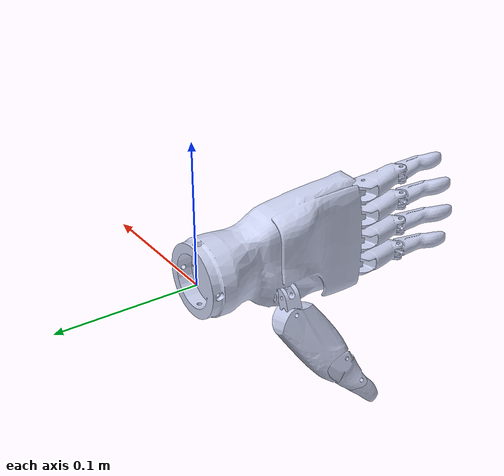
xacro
<?xml version="1.0"?>
<robot xmlns:xacro="http://www.ros.org/wiki/xacro">
  <!-- Define constants -->
  <xacro:property name="mesh_path" value="file://$(find dual_rm_65b_description)/meshes/" />

  <!-- Macro for visual and collision elements -->
  <xacro:macro name="visual_collision" params="mesh">
    <visual>
      <origin xyz="0 0 0" rpy="0 0 0" />
      <geometry>
        <mesh filename="${mesh_path}${mesh}" />
      </geometry>
      <material name="">
        <color rgba="0.79216 0.81961 0.93333 1" />
      </material>
    </visual>
    <collision>
      <origin xyz="0 0 0" rpy="0 0 0" />
      <geometry>
        <mesh filename="${mesh_path}${mesh}" />
      </geometry>
    </collision>
  </xacro:macro>

  <link
    name="right_hand_base_link">
    <inertial>
      <origin
        xyz="-0.0025264 -0.066047 0.0019598"
        rpy="0 0 0"/>
      <mass
        value="0.14143"/>
      <inertia
        ixx="0.00012281"
        ixy="2.1711E-06"
        ixz="1.7709E-06"
        iyy="8.3832E-05"
        iyz="-1.6551E-06"
        izz="7.6663E-05"/>
    </inertial>
    <xacro:visual_collision mesh="right_base_link.dae" />
    <collision>
      <origin
        xyz="0 -0.0136 0"
        rpy="1.57079 0 0"/>
      <geometry>
        <cylinder
          length="0.0278"
          radius="0.028"/>
      </geometry>
    </collision>
    <collision>
      <origin
        xyz="-0.0032 -0.038 0"
        rpy="0 0 0"/>
      <geometry>
        <box
          size="0.0391 0.0202 0.0574"/>
      </geometry>
    </collision>
    <collision>
      <origin
        xyz="-0.0032 -0.0682 0"
        rpy="0 0 0"/>
      <geometry>
        <box
          size="0.0391 0.04 0.0814"/>
      </geometry>
    </collision>
    <collision>
      <origin
        xyz="0 -0.1081 0"
        rpy="0 0 0"/>
      <geometry>
        <box
          size="0.0322 0.04 0.0814"/>
      </geometry>
    </collision>
    <collision>
      <origin
        xyz="-0.0016 -0.1340 0.0309"
        rpy="0 0 0"/>
      <geometry>
        <box
          size="0.0125 0.0111 0.0089"/>
      </geometry>
    </collision>
    <collision>
      <origin
        xyz="-0.0016 -0.1340 0.0118"
        rpy="0 0 0"/>
      <geometry>
        <box
          size="0.0125 0.0111 0.0089"/>
      </geometry>
    </collision>
    <collision>
      <origin
        xyz="-0.0016 -0.1340 -0.0070"
        rpy="0 0 0"/>
      <geometry>
        <box
          size="0.0125 0.0111 0.0089"/>
      </geometry>
    </collision>
    <collision>
      <origin
        xyz="-0.0016 -0.1340 -0.0262"
        rpy="0 0 0"/>
      <geometry>
        <box
          size="0.0125 0.0111 0.0089"/>
      </geometry>
    </collision>
  </link>

  <link
    name="right_thumb_proximal_base">
    <inertial>
      <origin
        xyz="-0.0048064 0.0009382 -0.00757"
        rpy="0 0 0"/>
      <mass
        value="0.0018869"/>
      <inertia
        ixx="5.816E-08"
        ixy="1.4539E-08"
        ixz="4.491E-09"
        iyy="7.9161E-08"
        iyz="-1.8727E-09"
        izz="6.7433E-08"/>
    </inertial>
    <xacro:visual_collision mesh="right_thumb_proximal_base.dae" />
  </link>

  <joint
    name="right_thumb_proximal_yaw_joint"
    type="revolute">
    <origin
      xyz="-0.01696 -0.0691 -0.02045"
      rpy="1.5708 -1.5708 0"/>
    <parent
      link="right_hand_base_link"/>
    <child
      link="right_thumb_proximal_base"/>
    <axis
      xyz="0 0 -1"/>
    <limit
      lower="0.0"
      upper="1.308"
      effort="1.0"
      velocity="0.5"/>
  </joint>

  <link
    name="right_thumb_proximal">
    <inertial>
      <origin
        xyz="0.021932 0.012785 -0.0080386"
        rpy="0 0 0"/>
      <mass
        value="0.0066075"/>
      <inertia
        ixx="1.5686E-06"
        ixy="-7.8296E-07"
        ixz="8.9143E-10"
        iyy="1.7353E-06"
        iyz="-1.0191E-09"
        izz="2.786E-06"/>
    </inertial>
    <xacro:visual_collision mesh="right_thumb_proximal.dae" />
  </link>

  <joint
    name="right_thumb_proximal_pitch_joint"
    type="revolute">
    <origin
      xyz="-0.0088099 0.010892 -0.00925"
      rpy="1.5708 0 2.8587"/>
    <parent
      link="right_thumb_proximal_base"/>
    <child
      link="right_thumb_proximal"/>
    <axis
      xyz="0 0 1"/>
    <limit
      lower="0"
      upper="0.6"
      effort="1.0"
      velocity="0.5"/>
  </joint>

  <link
    name="right_thumb_intermediate">
    <inertial>
      <origin
        xyz="0.0095544 -0.0016282 -0.0071997"
        rpy="0 0 0"/>
      <mass
        value="0.0037847"/>
      <inertia
        ixx="3.6981E-07"
        ixy="-9.8581E-08"
        ixz="-4.7469E-12"
        iyy="3.2394E-07"
        iyz="1.0939E-12"
        izz="4.6531E-07"/>
    </inertial>
    <xacro:visual_collision mesh="right_thumb_intermediate.dae" />
  </link>

  <joint
    name="right_thumb_intermediate_joint"
    type="revolute">
    <origin
      xyz="0.04407 0.034553 -0.0008"
      rpy="0 0 0"/>
    <parent
      link="right_thumb_proximal"/>
    <child
      link="right_thumb_intermediate"/>
    <axis
      xyz="0 0 1"/>
    <limit
      lower="0"
      upper="0.8"
      effort="1.0"
      velocity="0.5"/>
  </joint>

  <link
    name="right_thumb_distal">
    <inertial>
      <origin
        xyz="0.0092888 0.0049529 -0.0060033"
        rpy="0 0 0"/>
      <mass
        value="0.0033441"/>
      <inertia
        ixx="1.3632E-07"
        ixy="-5.6788E-08"
        ixz="-9.2764E-11"
        iyy="1.4052E-07"
        iyz="-1.2283E-10"
        izz="2.0026E-07"/>
    </inertial>
    <xacro:visual_collision mesh="right_thumb_distal.dae" />
  </link>

  <joint
    name="right_thumb_distal_joint" type="revolute">
    <origin
      xyz="0.020248 0.010156 -0.0012" rpy="0 0 0"/>
    <parent
      link="right_thumb_intermediate"/>
    <child
      link="right_thumb_distal"/>
    <axis
      xyz="0 0 1"/>
    <limit
      lower="0"
      upper="0.4"
      effort="1.0"
      velocity="0.5"/>
  </joint>

  <link
    name="right_index_proximal">
    <inertial>
      <origin
        xyz="0.0012259 0.011942 -0.0060001"
        rpy="0 0 0"/>
      <mass
        value="0.0042403"/>
      <inertia
        ixx="6.6232E-07"
        ixy="-1.5775E-08"
        ixz="1.8515E-12"
        iyy="2.1146E-07"
        iyz="-5.0828E-12"
        izz="6.9398E-07"/>
    </inertial>
    <xacro:visual_collision mesh="right_index_proximal.dae" />
  </link>

  <joint
    name="right_index_proximal_joint"
    type="revolute">
    <origin
      xyz="0.00028533 -0.13653 -0.032268"
      rpy="-3.1067 0 0"/>
    <parent
      link="right_hand_base_link"/>
    <child
      link="right_index_proximal"/>
    <axis
      xyz="0 0 1"/>
    <limit
      lower="0"
      upper="1.47"
      effort="1.0"
      velocity="0.5"/>
  </joint>

  <link
    name="right_index_intermediate">
    <inertial>
      <origin
        xyz="0.0019697 0.019589 -0.005"
        rpy="0 0 0"/>
      <mass
        value="0.0045683"/>
      <inertia
        ixx="7.6111E-07"
        ixy="8.7637E-08"
        ixz="-3.7751E-13"
        iyy="9.6076E-08"
        iyz="9.9444E-13"
        izz="7.8179E-07"/>
    </inertial>
    <xacro:visual_collision mesh="right_index_intermediate.dae" />
  </link>

  <joint
    name="right_index_intermediate_joint"
    type="revolute">
    <origin
      xyz="-0.0026138 0.032026 -0.001"
      rpy="0 0 0"/>
    <parent
      link="right_index_proximal"/>
    <child
      link="right_index_intermediate"/>
    <axis
      xyz="0 0 1"/>
    <limit
      lower="-0.04545"
      upper="1.56"
      effort="1.0"
      velocity="0.5"/>
  </joint>

  <link
    name="right_middle_proximal">
    <inertial>
      <origin
        xyz="0.001297 0.011934 -0.0060001"
        rpy="0 0 0"/>
      <mass
        value="0.0042403"/>
      <inertia
        ixx="6.6211E-07"
        ixy="-1.8461E-08"
        ixz="1.8002E-12"
        iyy="2.1167E-07"
        iyz="-6.6808E-12"
        izz="6.9397E-07"/>
    </inertial>
    <xacro:visual_collision mesh="right_index_proximal.dae" />
  </link>

  <joint
    name="right_middle_proximal_joint"
    type="revolute">
    <origin
      xyz="0.00028533 -0.1371 -0.01295"
      rpy="-3.1416 0 0"/>
    <parent
      link="right_hand_base_link"/>
    <child
      link="right_middle_proximal"/>
    <axis
      xyz="0 0 1"/>
    <limit
      lower="0"
      upper="1.47"
      effort="1.0"
      velocity="0.5"/>
  </joint>

  <link
    name="right_middle_intermediate">
    <inertial>
      <origin
        xyz="0.001921 0.020796 -0.005"
        rpy="0 0 0"/>
      <mass
        value="0.0050396"/>
      <inertia
        ixx="9.5822E-07"
        ixy="1.1425E-07"
        ixz="-2.4791E-12"
        iyy="1.0646E-07"
        iyz="5.9173E-12"
        izz="9.8384E-07"/>
    </inertial>
    <xacro:visual_collision mesh="right_middle_intermediate.dae" />
  </link>

  <joint
    name="right_middle_intermediate_joint"
    type="revolute">
    <origin
      xyz="-0.0024229 0.032041 -0.001"
      rpy="0 0 0"/>
    <parent
      link="right_middle_proximal"/>
    <child
      link="right_middle_intermediate"/>
    <axis
      xyz="0 0 1"/>
    <limit
      lower="-0.04545"
      upper="1.56"
      effort="1.0"
      velocity="0.5"/>
  </joint>

  <link
    name="right_ring_proximal">
    <inertial>
      <origin
        xyz="0.001297 0.011934 -0.0060002"
        rpy="0 0 0"/>
      <mass
        value="0.0042403"/>
      <inertia
        ixx="6.6211E-07"
        ixy="-1.8461E-08"
        ixz="1.5793E-12"
        iyy="2.1167E-07"
        iyz="-6.6868E-12"
        izz="6.9397E-07"/>
    </inertial>
    <xacro:visual_collision mesh="right_index_proximal.dae" />
  </link>

  <joint
    name="right_ring_proximal_joint"
    type="revolute">
    <origin
      xyz="0.00028533 -0.13691 0.0062872"
      rpy="3.0892 0 0"/>
    <parent
      link="right_hand_base_link"/>
    <child
      link="right_ring_proximal"/>
    <axis
      xyz="0 0 1"/>
    <limit
      lower="0"
      upper="1.47"
      effort="1.0"
      velocity="0.5"/>
  </joint>

  <link
    name="right_ring_intermediate">
    <inertial>
      <origin
        xyz="0.0021753 0.019567 -0.005"
        rpy="0 0 0"/>
      <mass
        value="0.0045683"/>
      <inertia
        ixx="7.6286E-07"
        ixy="8.0635E-08"
        ixz="-6.1562E-13"
        iyy="9.431E-08"
        iyz="5.8619E-13"
        izz="7.8177E-07"/>
    </inertial>
    <xacro:visual_collision mesh="right_index_intermediate.dae" />
  </link>

  <joint
    name="right_ring_intermediate_joint" type="revolute">
    <origin
      xyz="-0.0024229 0.032041 -0.001" rpy="0 0 0"/>
    <parent
      link="right_ring_proximal"/>
    <child
      link="right_ring_intermediate"/>
    <axis
      xyz="0 0 1"/>
    <limit
      lower="-0.04545"
      upper="1.56"
      effort="1.0"
      velocity="0.5"/>
  </joint>

  <link
    name="right_pinky_proximal">
    <inertial>
      <origin
        xyz="0.001297 0.011934 -0.0060001"
        rpy="0 0 0"/>
      <mass
        value="0.0042403"/>
      <inertia
        ixx="6.6211E-07"
        ixy="-1.8461E-08"
        ixz="1.6907E-12"
        iyy="2.1167E-07"
        iyz="-6.9334E-12"
        izz="6.9397E-07"/>
    </inertial>
    <xacro:visual_collision mesh="right_index_proximal.dae" />
  </link>

  <joint
    name="right_pinky_proximal_joint"
    type="revolute">
    <origin
      xyz="0.00028533 -0.13571 0.025488"
      rpy="3.0369 0 0"/>
    <parent
      link="right_hand_base_link"/>
    <child
      link="right_pinky_proximal"/>
    <axis
      xyz="0 0 1"/>
    <limit
      lower="0"
      upper="1.47"
      effort="1.0"
      velocity="0.5"/>
  </joint>

  <link
    name="right_pinky_intermediate">
    <inertial>
      <origin
        xyz="0.0024748 0.016203 -0.0050031"
        rpy="0 0 0"/>
      <mass
        value="0.0035996"/>
      <inertia
        ixx="4.3913E-07"
        ixy="4.1418E-08"
        ixz="3.7168E-11"
        iyy="7.0247E-08"
        iyz="5.8613E-11"
        izz="4.4867E-07"/>
    </inertial>
    <xacro:visual_collision mesh="right_pinky_intermediate.dae" />
  </link>

  <joint
    name="right_pinky_intermediate_joint"
    type="revolute">
    <origin
      xyz="-0.0024229 0.032041 -0.001"
      rpy="0 0 0"/>
    <parent
      link="right_pinky_proximal"/>
    <child
      link="right_pinky_intermediate"/>
    <axis
      xyz="0 0 1"/>
    <limit
      lower="-0.04545"
      upper="1.56"
      effort="1.0"
      velocity="0.5"/>
  </joint>

  <link
    name='right_thumb_tip'/>

  <joint
    name="right_thumb_tip_joint"
    type="fixed">
    <origin
      xyz="0.0202 0.0140 -0.006"
      rpy="0 0 0"/>
    <parent
      link="right_thumb_distal"/>
    <child
      link="right_thumb_tip"/>
  </joint>

  <link
    name='right_index_tip'/>

  <joint
    name="right_index_tip_joint"
    type="fixed">
    <origin
      xyz="-0.0008 0.045 -0.005"
      rpy="0 0 0"/>
    <parent
      link="right_index_intermediate"/>
    <child
      link="right_index_tip"/>
  </joint>

  <link
    name='right_middle_tip'/>

  <joint
    name="right_middle_tip_joint"
    type="fixed">
    <origin xyz="-0.001 0.048 -0.005" rpy="0 0 0"/>
    <parent link="right_middle_intermediate"/>
    <child link="right_middle_tip"/>
  </joint>

  <link name='right_ring_tip'/>

  <joint
    name="right_ring_tip_joint"
    type="fixed">
    <origin
      xyz="-0.0008 0.045 -0.005"
      rpy="0 0 0"/>
    <parent
      link="right_ring_intermediate"/>
    <child
      link="right_ring_tip"/>
  </joint>

  <link
    name='right_pinky_tip'/>

  <joint
    name="right_pinky_tip_joint"
    type="fixed">
    <origin
      xyz="-0.0008 0.037 -0.005"
      rpy="0 0 0"/>
    <parent
      link="right_pinky_intermediate"/>
    <child
      link="right_pinky_tip"/>
  </joint>

</robot>
